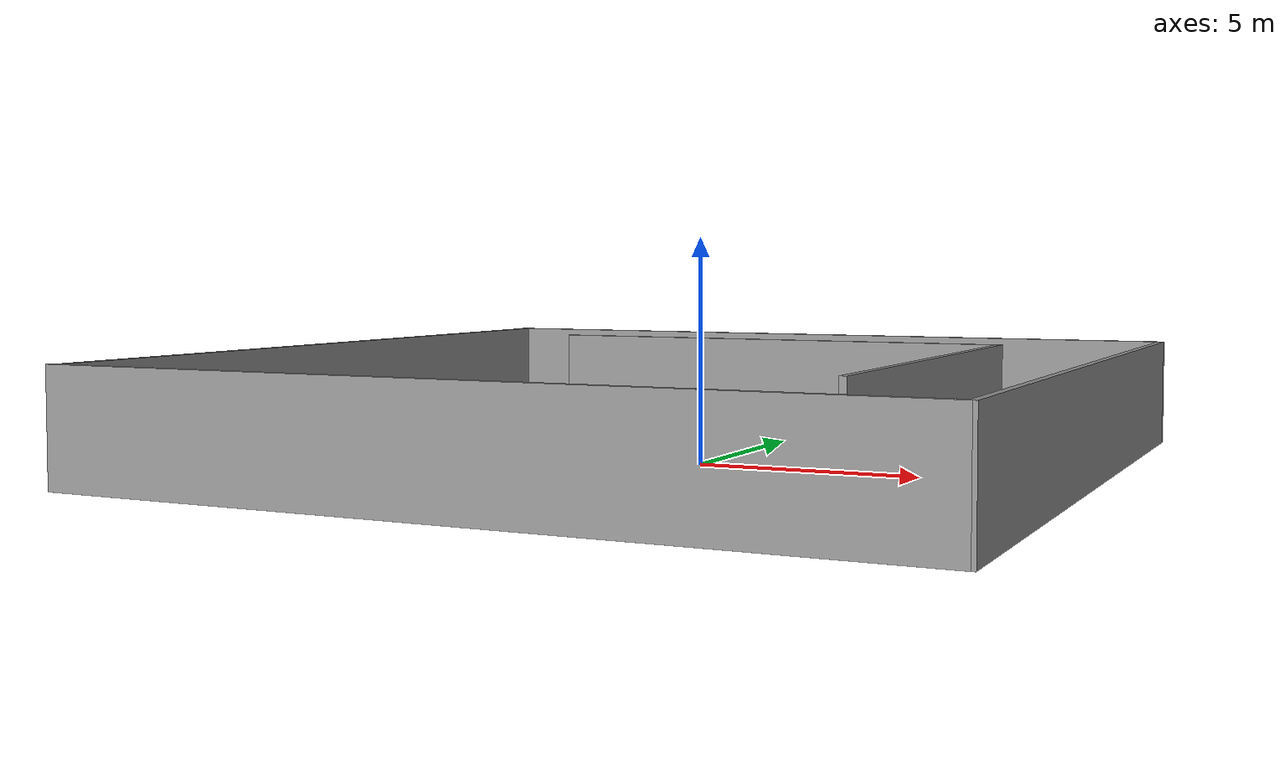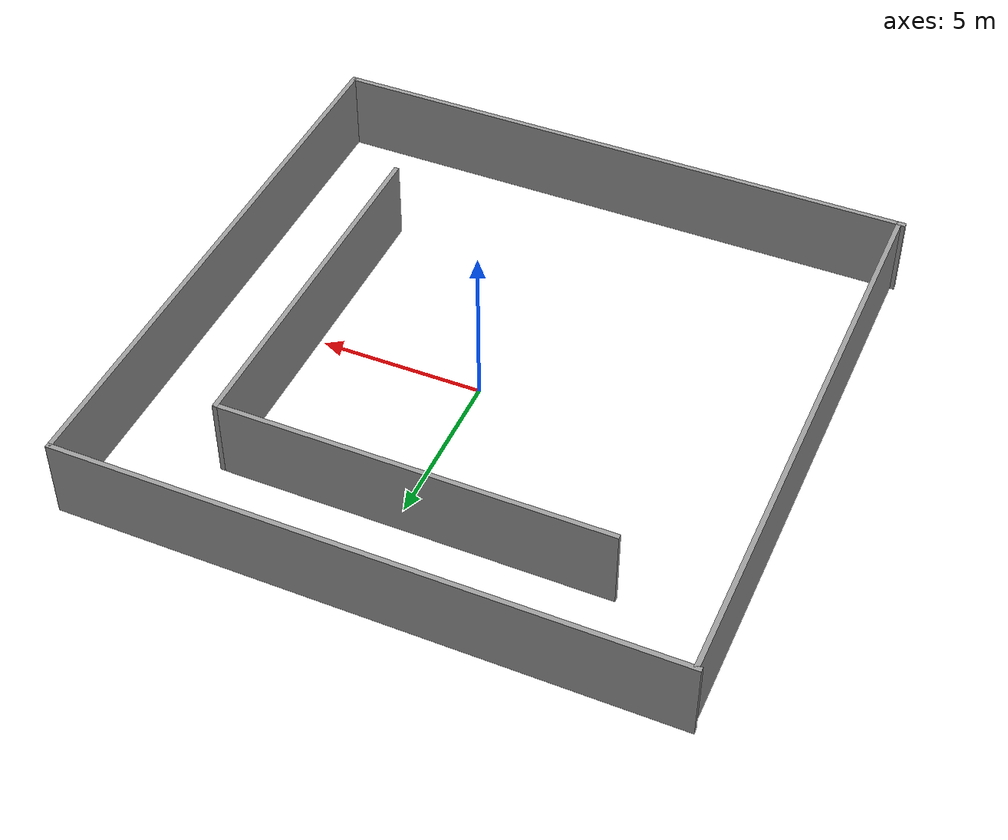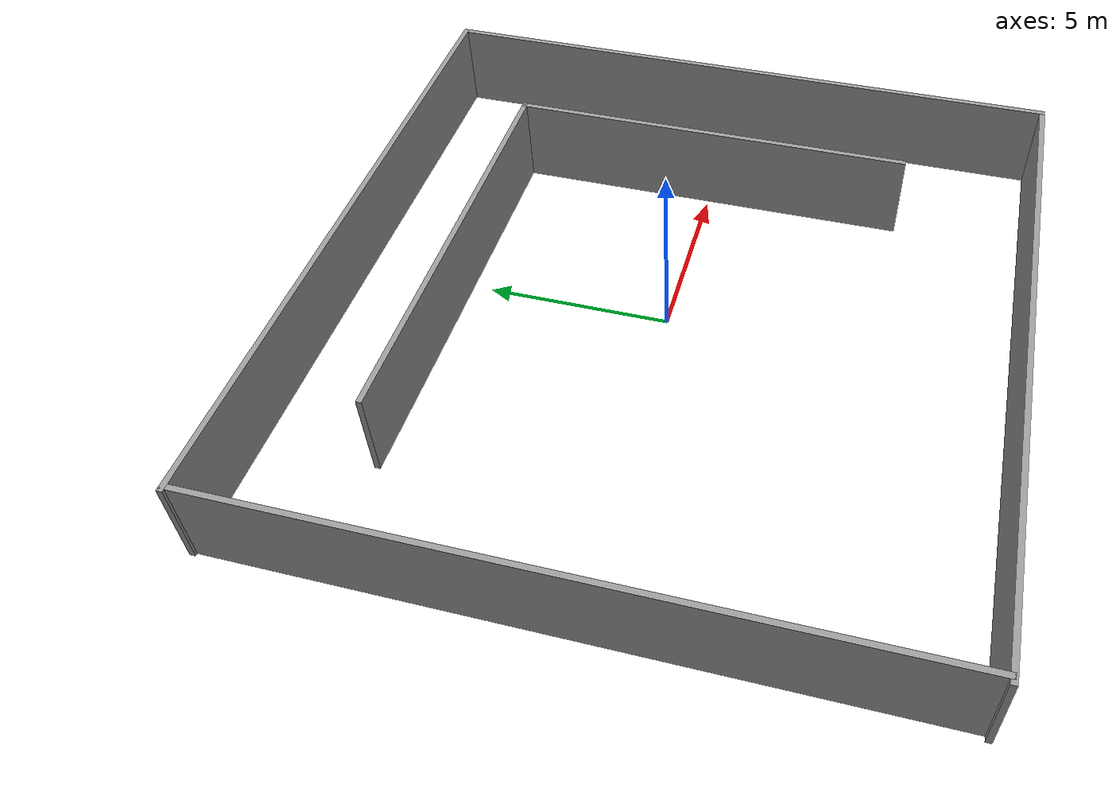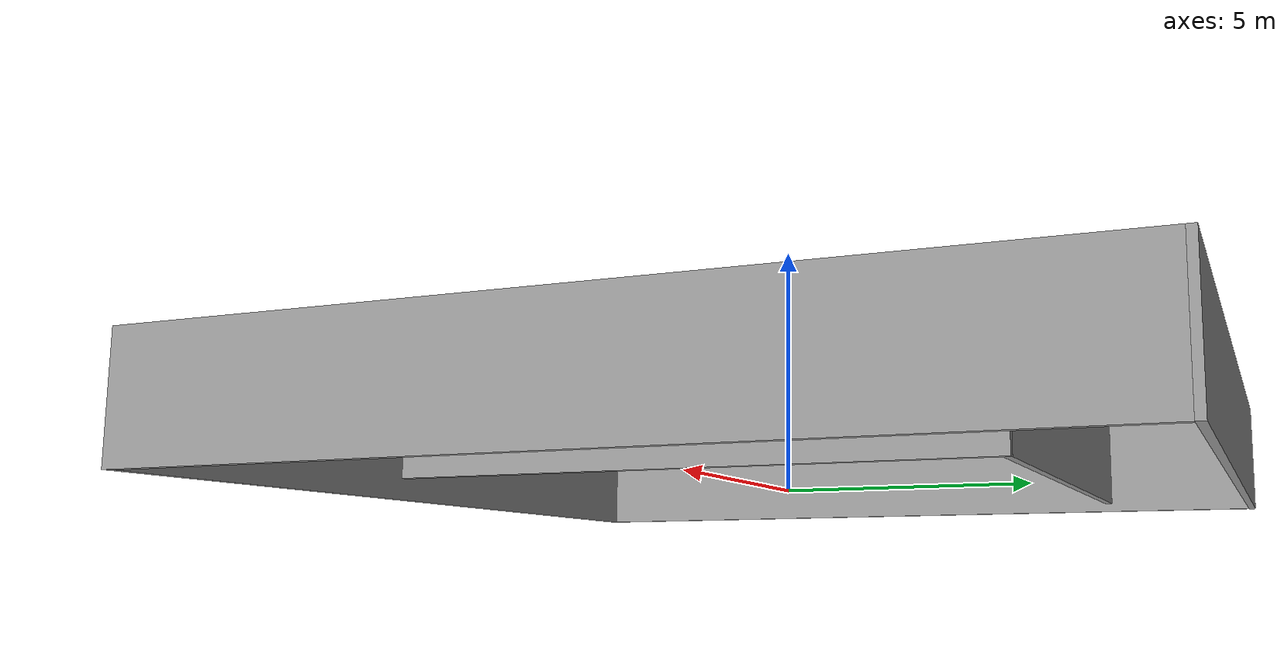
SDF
<?xml version='1.0'?>
<sdf version='1.7'>
  <model name='maze_walls'>
    <pose>-0.586567 -0.24274 0 0 -0 0</pose>
    <link name='Wall_10'>
      <collision name='Wall_10_Collision'>
        <geometry>
          <box>
            <size>18.302 0.15 2.5</size>
          </box>
        </geometry>
        <pose>0 0 1.25 0 -0 0</pose>
      </collision>
      <visual name='Wall_10_Visual'>
        <pose>0 0 1.25 0 -0 0</pose>
        <geometry>
          <box>
            <size>18.302 0.15 2.5</size>
          </box>
        </geometry>
        <material>
          <script>
            <uri>file://media/materials/scripts/gazebo.material</uri>
            <name>Gazebo/Grey</name>
          </script>
          <ambient>1 1 1 1</ambient>
        </material>
        <meta>
          <layer>0</layer>
        </meta>
      </visual>
      <pose>-0.040686 -8.94454 0 0 -0 0</pose>
    </link>
    <link name='Wall_11'>
      <collision name='Wall_11_Collision'>
        <geometry>
          <box>
            <size>17.9683 0.15 2.5</size>
          </box>
        </geometry>
        <pose>0 0 1.25 0 -0 0</pose>
      </collision>
      <visual name='Wall_11_Visual'>
        <pose>0 0 1.25 0 -0 0</pose>
        <geometry>
          <box>
            <size>17.9683 0.15 2.5</size>
          </box>
        </geometry>
        <material>
          <script>
            <uri>file://media/materials/scripts/gazebo.material</uri>
            <name>Gazebo/Grey</name>
          </script>
          <ambient>1 1 1 1</ambient>
        </material>
        <meta>
          <layer>0</layer>
        </meta>
      </visual>
      <pose>9.11666 -0.035379 0 0 -0 1.5708</pose>
    </link>
    <link name='Wall_12'>
      <collision name='Wall_12_Collision'>
        <geometry>
          <box>
            <size>18.3302 0.15 2.5</size>
          </box>
        </geometry>
        <pose>0 0 1.25 0 -0 0</pose>
      </collision>
      <visual name='Wall_12_Visual'>
        <pose>0 0 1.25 0 -0 0</pose>
        <geometry>
          <box>
            <size>18.3302 0.15 2.5</size>
          </box>
        </geometry>
        <material>
          <script>
            <uri>file://media/materials/scripts/gazebo.material</uri>
            <name>Gazebo/Grey</name>
          </script>
          <ambient>1 1 1 1</ambient>
        </material>
        <meta>
          <layer>0</layer>
        </meta>
      </visual>
      <pose>0.026583 8.94454 0 0 -0 3.14159</pose>
    </link>
    <link name='Wall_13'>
      <collision name='Wall_13_Collision'>
        <geometry>
          <box>
            <size>18 0.15 2.5</size>
          </box>
        </geometry>
        <pose>0 0 1.25 0 -0 0</pose>
      </collision>
      <visual name='Wall_13_Visual'>
        <pose>0 0 1.25 0 -0 0</pose>
        <geometry>
          <box>
            <size>18 0.15 2.5</size>
          </box>
        </geometry>
        <material>
          <script>
            <uri>file://media/materials/scripts/gazebo.material</uri>
            <name>Gazebo/Grey</name>
          </script>
          <ambient>1 1 1 1</ambient>
        </material>
        <meta>
          <layer>0</layer>
        </meta>
      </visual>
      <pose>-8.99274 0.019545 0 0 -0 -1.5708</pose>
    </link>
    <link name='Wall_15'>
      <collision name='Wall_15_Collision'>
        <geometry>
          <box>
            <size>11.75 0.15 2.5</size>
          </box>
        </geometry>
        <pose>0 0 1.25 0 -0 0</pose>
      </collision>
      <visual name='Wall_15_Visual'>
        <pose>0 0 1.25 0 -0 0</pose>
        <geometry>
          <box>
            <size>11.75 0.15 2.5</size>
          </box>
        </geometry>
        <material>
          <script>
            <uri>file://media/materials/scripts/gazebo.material</uri>
            <name>Gazebo/Grey</name>
          </script>
          <ambient>1 1 1 1</ambient>
        </material>
        <meta>
          <layer>0</layer>
        </meta>
      </visual>
      <pose>0.034939 5.85389 0 0 -0 0</pose>
    </link>
    <link name='Wall_16'>
      <collision name='Wall_16_Collision'>
        <geometry>
          <box>
            <size>11.25 0.15 2.5</size>
          </box>
        </geometry>
        <pose>0 0 1.25 0 -0 0</pose>
      </collision>
      <visual name='Wall_16_Visual'>
        <pose>0 0 1.25 0 -0 0</pose>
        <geometry>
          <box>
            <size>11.25 0.15 2.5</size>
          </box>
        </geometry>
        <material>
          <script>
            <uri>file://media/materials/scripts/gazebo.material</uri>
            <name>Gazebo/Grey</name>
          </script>
          <ambient>1 1 1 1</ambient>
        </material>
        <meta>
          <layer>0</layer>
        </meta>
      </visual>
      <pose>5.83494 0.303892 0 0 -0 -1.5708</pose>
    </link>
    <static>1</static>
  </model>
</sdf>
